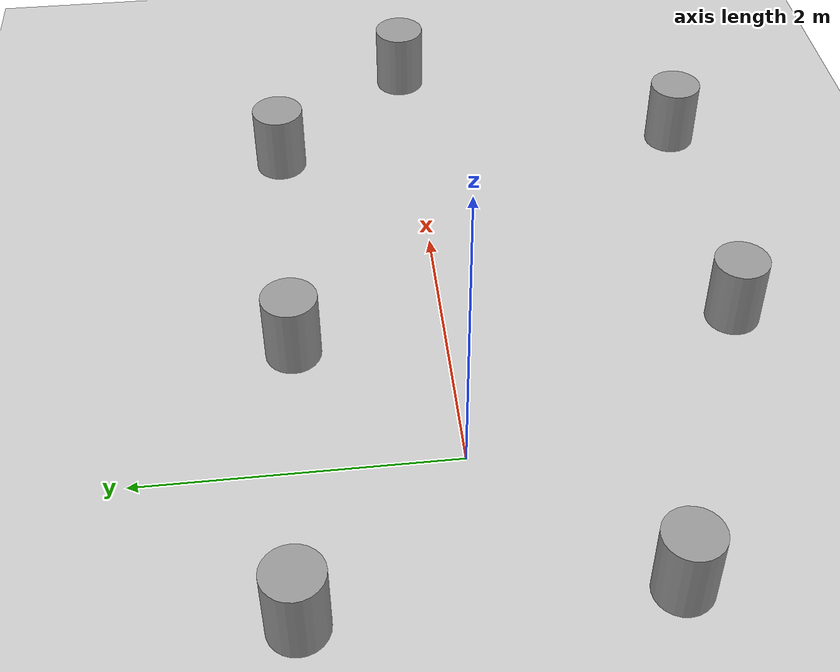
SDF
<sdf version="1.6">
 <world name="default">
  <model name="ground_plane">
   <static>1</static>
   <link name="link">
    <collision name="collision">
     <geometry><plane><normal>0 0 1</normal><size>100 100</size></plane></geometry>
     <surface>
      <contact><collide_bitmask>65535</collide_bitmask></contact>
      <friction><ode><mu>100</mu><mu2>50</mu2></ode></friction>
     </surface>
    </collision>
    <visual name="visual">
     <cast_shadows>0</cast_shadows>
     <geometry><plane><normal>0 0 1</normal><size>100 100</size></plane></geometry>
     <material>
      <script><uri>file://media/materials/scripts/gazebo.material</uri><name>Gazebo/Grey</name></script>
     </material>
    </visual>
   </link>
  </model>
  <light name="sun" type="directional">
   <pose>0 0 10 0 -0 0</pose>
   <diffuse>0.8 0.8 0.8 1</diffuse>
   <specular>0.2 0.2 0.2 1</specular>
   <attenuation>
    <range>1000</range>
    <constant>0.9</constant>
    <linear>0.01</linear>
    <quadratic>0.001</quadratic>
   </attenuation>
   <direction>-0.5 0.1 -0.9</direction>
  </light>
  <gravity>0 0 -9.8</gravity>
  <magnetic_field>6e-06 2.3e-05 -4.2e-05</magnetic_field>
  <atmosphere type="adiabatic"/>
  <physics name="default_physics" default="0" type="ode">
   <max_step_size>0.001</max_step_size>
   <real_time_factor>1</real_time_factor>
   <real_time_update_rate>1000</real_time_update_rate>
  </physics>
  <scene><ambient>0.4 0.4 0.4 1</ambient><background>0.7 0.7 0.7 1</background><shadows>1</shadows></scene>
  <audio><device>default</device></audio>
  <spherical_coordinates>
   <surface_model>EARTH_WGS84</surface_model>
   <latitude_deg>0</latitude_deg>
   <longitude_deg>0</longitude_deg>
   <elevation>0</elevation>
   <heading_deg>0</heading_deg>
  </spherical_coordinates>
  <model name="unit_cylinder">
   <pose>1.02353 -1.90605 0.247531 0 -0 0</pose>
   <link name="link">
    <inertial>
     <mass>1</mass>
     <inertia><ixx>0.145833</ixx><ixy>0</ixy><ixz>0</ixz><iyy>0.145833</iyy><iyz>0</iyz><izz>0.125</izz></inertia>
    </inertial>
    <collision name="collision">
     <geometry><cylinder><radius>0.180905</radius><length>0.495063</length></cylinder></geometry>
    </collision>
    <visual name="visual">
     <geometry><cylinder><radius>0.180905</radius><length>0.495063</length></cylinder></geometry>
     <material>
      <script><name>Gazebo/Grey</name><uri>file://media/materials/scripts/gazebo.material</uri></script>
     </material>
    </visual>
   </link>
  </model>
  <model name="unit_cylinder_clone">
   <pose>3.01222 -1.96454 0.247531 0 -0 0</pose>
   <link name="link">
    <inertial>
     <mass>1</mass>
     <inertia><ixx>0.145833</ixx><ixy>0</ixy><ixz>0</ixz><iyy>0.145833</iyy><iyz>0</iyz><izz>0.125</izz></inertia>
    </inertial>
    <collision name="collision">
     <geometry><cylinder><radius>0.180905</radius><length>0.495063</length></cylinder></geometry>
    </collision>
    <visual name="visual">
     <geometry><cylinder><radius>0.180905</radius><length>0.495063</length></cylinder></geometry>
     <material>
      <script><name>Gazebo/Grey</name><uri>file://media/materials/scripts/gazebo.material</uri></script>
     </material>
    </visual>
   </link>
  </model>
  <model name="unit_cylinder_clone_0">
   <pose>3.00596 1.00853 0.247522 0 -0 0</pose>
   <link name="link">
    <inertial>
     <mass>1</mass>
     <inertia><ixx>0.145833</ixx><ixy>0</ixy><ixz>0</ixz><iyy>0.145833</iyy><iyz>0</iyz><izz>0.125</izz></inertia>
    </inertial>
    <collision name="collision">
     <geometry><cylinder><radius>0.180905</radius><length>0.495063</length></cylinder></geometry>
    </collision>
    <visual name="visual">
     <geometry><cylinder><radius>0.180905</radius><length>0.495063</length></cylinder></geometry>
     <material>
      <script><name>Gazebo/Grey</name><uri>file://media/materials/scripts/gazebo.material</uri></script>
     </material>
    </visual>
   </link>
  </model>
  <model name="unit_cylinder_clone_1">
   <pose>0.996958 0.991085 0.247531 0 -0 0</pose>
   <link name="link">
    <inertial>
     <mass>1</mass>
     <inertia><ixx>0.145833</ixx><ixy>0</ixy><ixz>0</ixz><iyy>0.145833</iyy><iyz>0</iyz><izz>0.125</izz></inertia>
    </inertial>
    <collision name="collision">
     <geometry><cylinder><radius>0.180905</radius><length>0.495063</length></cylinder></geometry>
    </collision>
    <visual name="visual">
     <geometry><cylinder><radius>0.180905</radius><length>0.495063</length></cylinder></geometry>
     <material>
      <script><name>Gazebo/Grey</name><uri>file://media/materials/scripts/gazebo.material</uri></script>
     </material>
    </visual>
   </link>
  </model>
  <model name="unit_cylinder_clone_2">
   <pose>4.00117 0.023271 0.247522 0 -0 0</pose>
   <link name="link">
    <inertial>
     <mass>1</mass>
     <inertia><ixx>0.145833</ixx><ixy>0</ixy><ixz>0</ixz><iyy>0.145833</iyy><iyz>0</iyz><izz>0.125</izz></inertia>
    </inertial>
    <collision name="collision">
     <geometry><cylinder><radius>0.180905</radius><length>0.495063</length></cylinder></geometry>
    </collision>
    <visual name="visual">
     <geometry><cylinder><radius>0.180905</radius><length>0.495063</length></cylinder></geometry>
     <material>
      <script><name>Gazebo/Grey</name><uri>file://media/materials/scripts/gazebo.material</uri></script>
     </material>
    </visual>
   </link>
  </model>
  <model name="unit_cylinder_clone_3">
   <pose>-1.04236 -1.05193 0.247531 0 -0 0</pose>
   <link name="link">
    <inertial>
     <mass>1</mass>
     <inertia><ixx>0.145833</ixx><ixy>0</ixy><ixz>0</ixz><iyy>0.145833</iyy><iyz>0</iyz><izz>0.125</izz></inertia>
    </inertial>
    <collision name="collision">
     <geometry><cylinder><radius>0.180905</radius><length>0.495063</length></cylinder></geometry>
    </collision>
    <visual name="visual">
     <geometry><cylinder><radius>0.180905</radius><length>0.495063</length></cylinder></geometry>
     <material>
      <script><name>Gazebo/Grey</name><uri>file://media/materials/scripts/gazebo.material</uri></script>
     </material>
    </visual>
   </link>
  </model>
  <model name="unit_cylinder_clone_4">
   <pose>-1.05334 1.03909 0.247522 0 -0 0</pose>
   <link name="link">
    <inertial>
     <mass>1</mass>
     <inertia><ixx>0.145833</ixx><ixy>0</ixy><ixz>0</ixz><iyy>0.145833</iyy><iyz>0</iyz><izz>0.125</izz></inertia>
    </inertial>
    <collision name="collision">
     <geometry><cylinder><radius>0.180905</radius><length>0.495063</length></cylinder></geometry>
    </collision>
    <visual name="visual">
     <geometry><cylinder><radius>0.180905</radius><length>0.495063</length></cylinder></geometry>
     <material>
      <script><name>Gazebo/Grey</name><uri>file://media/materials/scripts/gazebo.material</uri></script>
     </material>
    </visual>
   </link>
  </model>
 </world>
</sdf>
